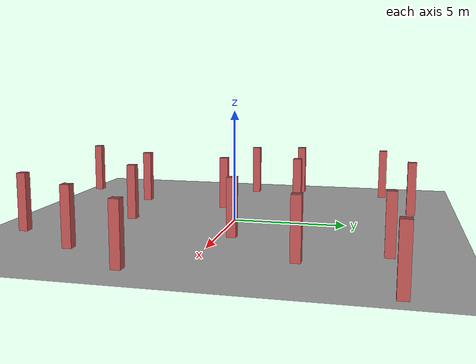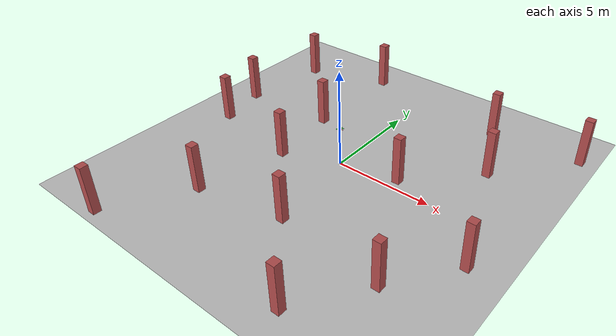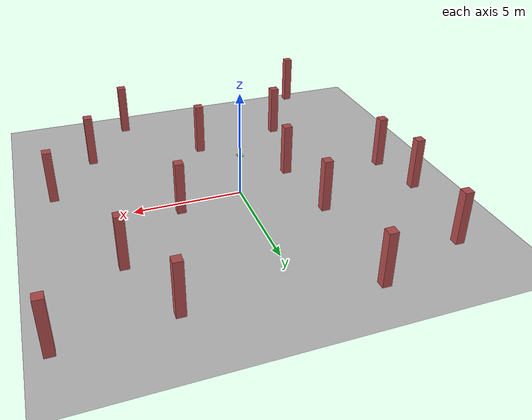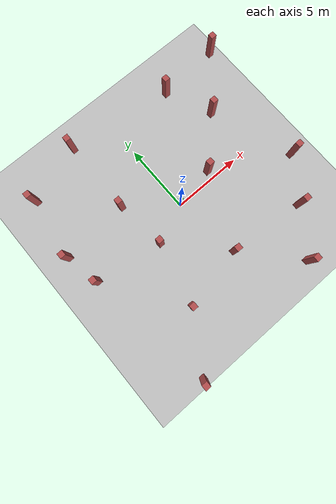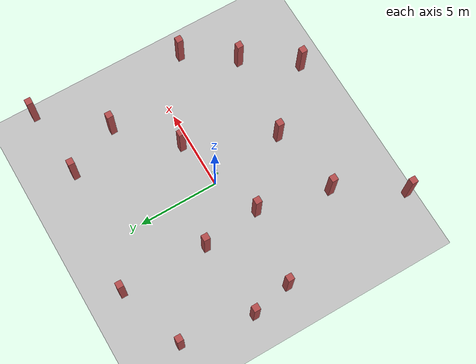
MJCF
<mujoco model="quadrotor0">
	<compiler coordinate="local" inertiafromgeom="true" />
	<option density="1" gravity="0 0 -9.81" timestep="0.01" viscosity="1e-5" />

	<visual> <map znear="0.00005" /> </visual>

	<worldbody>
		<geom conaffinity="1" condim="3" name="floor" pos="0 0 0" rgba="0.75 0.75 0.75 1" size="10 10 .2" type="plane" />
		<body name="quadrotor" pos="0 0 2">

			<camera fovy="35" mode="fixed" name="onbodycam_0" pos="0 0.06 0.05" xyaxes="1 0 0 0 0 1" />

			<geom mass=".1" name="core" pos="0 0 0" quat="1. 0. 0. 0" rgba="0.3 0.3 0.8 1" size="0.06 0.035 0.025" type="box" />

			<site name="site_sens_0" pos="0 0.15 0" size="0.001 0.001 0.001" type="box" zaxis="0. 1. 0." />

			<geom mass=".025" name="a00" pos=".071 0.071 0.0" quat=".924 0.0 0.0 0.383" rgba="0.3 0.3 0.8 1" size="0.05 0.01 0.0025" type="box" />
			<geom mass=".025" name="a10" pos=".071 -0.071 0.0" quat=".383 0.0 0.0 0.924" rgba="0.3 0.3 0.8 1" size="0.05 0.01 0.0025" type="box" />
			<geom mass=".025" name="a20" pos="-0.071 -0.071 0.0" quat="-.383 0.0 0.0 0.924" rgba="0.3 0.3 0.8 1" size="0.05 0.01 0.0025" type="box" />
			<geom mass=".025" name="a30" pos="-.071 0.071 0.0" quat=".924 0.0 0.0 -0.383" rgba="0.3 0.3 0.8 1" size="0.05 0.01 0.0025" type="box" />

			<joint armature="0" damping="0" name="root" pos="0 0 0" type="free" />

            <site name="motor0" pos=" 0.1  0.1 0.01" quat="1.0 0.0 0.0 0." rgba="0.3 0.8 0.3 1" size="0.01 0.0025" type="cylinder" />
            <site name="motor1" pos=" 0.1 -0.1 0.01" quat="1.0 0.0 0.0 0." rgba="0.3 0.8 0.3 1" size="0.01 0.0025" type="cylinder" />
            <site name="motor2" pos="-0.1 -0.1 0.01" quat="1.0 0.0 0.0 0." rgba="0.3 0.8 0.3 1" size="0.01 0.0025" type="cylinder" />
            <site name="motor3" pos="-0.1  0.1 0.01" quat="1.0 0.0 0.0 0." rgba="0.3 0.8 0.3 1" size="0.01 0.0025" type="cylinder" />

            <geom mass=".025" name="thruster0" pos=" 0.1  0.1  0.01" quat="1.0 0.0 0.0 0." rgba="0.3 0.8 0.3 1" size="0.05 0.0025" type="cylinder" />
            <geom mass=".025" name="thruster1" pos=" 0.1 -0.1  0.01" quat="1.0 0.0 0.0 0." rgba="0.3 0.8 0.3 1" size="0.05 0.0025" type="cylinder" />
            <geom mass=".025" name="thruster2" pos="-0.1 -0.1  0.01" quat="1.0 0.0 0.0 0." rgba="0.3 0.8 0.3 1" size="0.05 0.0025" type="cylinder" />
            <geom mass=".025" name="thruster3" pos="-0.1  0.1  0.01" quat="1.0 0.0 0.0 0." rgba="0.3 0.8 0.3 1" size="0.05 0.0025" type="cylinder" />

			<site name="qcX" pos="0.1 0.0 0.0" quat=" 1.000  0.0  0.0    0." rgba="1 0 0 1" size="0.1 0.005 0.005" type="box" />
			<site name="qcY" pos="0.0 0.1 0.0" quat=" 0.707  0.0  0.0    0.707" rgba="0 1 0 1" size="0.1 0.005 0.005" type="box" />
			<site name="qcZ" pos="0.0 0.0 0.1" quat="-0.707  0.0  0.707  0." rgba="0 0 1 1" size="0.1 0.005 0.005" type="box" />
		</body>

		<light cutoff="100" diffuse="1 1 1" dir="0 0 -1" directional="true" exponent="1" pos="0 0 10" specular=".1 .1 .1" />
		<light cutoff="100" diffuse="1 1 1" dir="0 0 1" directional="true" exponent="1" pos="0 0 0.25" specular=".1 .1 .1" />

	<geom pos="-6.200038624011972 -9.429130734077113 1.25" rgba="0.7 0.3 0.3 1" size="0.2 0.2 1.25" type="box" /><geom pos="-7.473774301268261 -0.40935360794521714 1.25" rgba="0.7 0.3 0.3 1" size="0.2 0.2 1.25" type="box" /><geom pos="-7.974882212435634 2.065902352152373 1.25" rgba="0.7 0.3 0.3 1" size="0.2 0.2 1.25" type="box" /><geom pos="-7.324200239430064 6.512175774696661 1.25" rgba="0.7 0.3 0.3 1" size="0.2 0.2 1.25" type="box" /><geom pos="-3.8102658571049086 -5.582055680998018 1.25" rgba="0.7 0.3 0.3 1" size="0.2 0.2 1.25" type="box" /><geom pos="-2.7714315279439967 -1.1638241098059474 1.25" rgba="0.7 0.3 0.3 1" size="0.2 0.2 1.25" type="box" /><geom pos="-3.159962722173399 2.447661500873589 1.25" rgba="0.7 0.3 0.3 1" size="0.2 0.2 1.25" type="box" /><geom pos="-3.105072303183452 7.876888702215501 1.25" rgba="0.7 0.3 0.3 1" size="0.2 0.2 1.25" type="box" /><geom pos="3.9399627804833077 -8.349621737832555 1.25" rgba="0.7 0.3 0.3 1" size="0.2 0.2 1.25" type="box" /><geom pos="0.6350746638003507 -4.71350659247974 1.25" rgba="0.7 0.3 0.3 1" size="0.2 0.2 1.25" type="box" /><geom pos="2.9868279630232952 0.5671203217448612 1.25" rgba="0.7 0.3 0.3 1" size="0.2 0.2 1.25" type="box" /><geom pos="4.603414904749624 6.908828172708796 1.25" rgba="0.7 0.3 0.3 1" size="0.2 0.2 1.25" type="box" /><geom pos="6.115625943132827 -5.2153520192113865 1.25" rgba="0.7 0.3 0.3 1" size="0.2 0.2 1.25" type="box" /><geom pos="8.260140183583704 -2.2890323963835084 1.25" rgba="0.7 0.3 0.3 1" size="0.2 0.2 1.25" type="box" /><geom pos="6.04953554956462 3.6286456708039285 1.25" rgba="0.7 0.3 0.3 1" size="0.2 0.2 1.25" type="box" /><geom pos="9.153244383114298 7.283117058488725 1.25" rgba="0.7 0.3 0.3 1" size="0.2 0.2 1.25" type="box" /></worldbody>

	<sensor> <rangefinder name="sens_0" site="site_sens_0" /> </sensor>

    <actuator>
        <motor ctrllimited="true" ctrlrange="0.0 1.0" gear="0  0. 1. 0. 0. -0.1" site="motor0" />
        <motor ctrllimited="true" ctrlrange="0.0 1.0" gear="0  0. 1. 0. 0.  0.1" site="motor1" />
        <motor ctrllimited="true" ctrlrange="0.0 1.0" gear="0  0. 1. 0. 0. -0.1" site="motor2" />
        <motor ctrllimited="true" ctrlrange="0.0 1.0" gear="0  0. 1. 0. 0.  0.1" site="motor3" />
	</actuator>
</mujoco>
